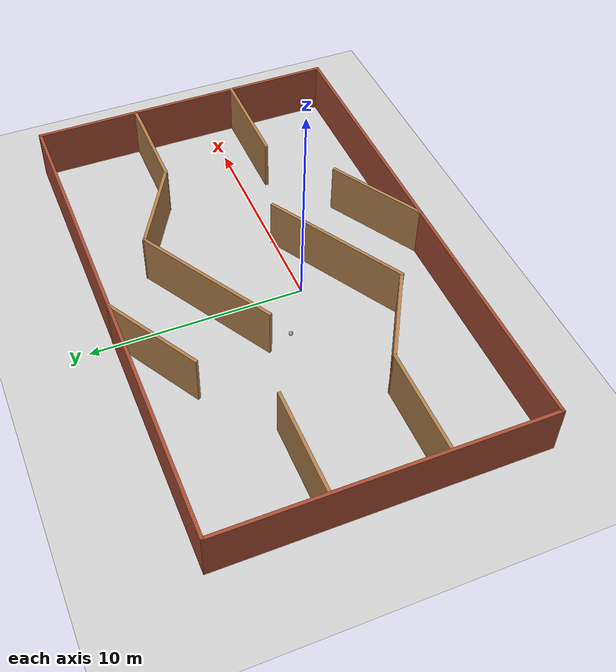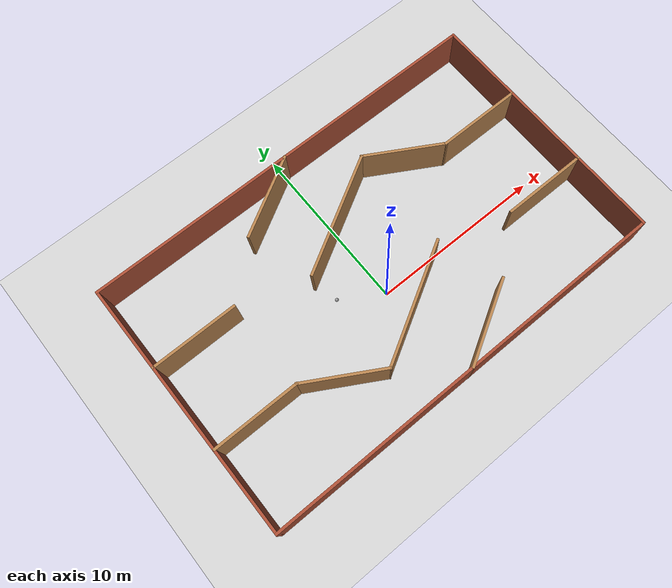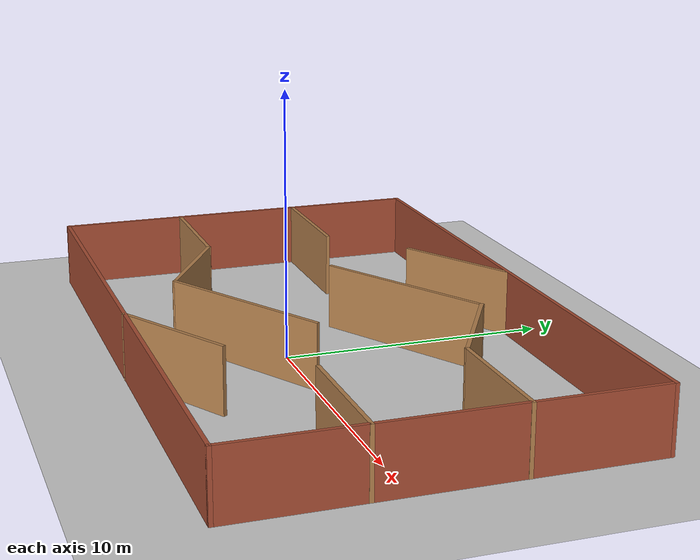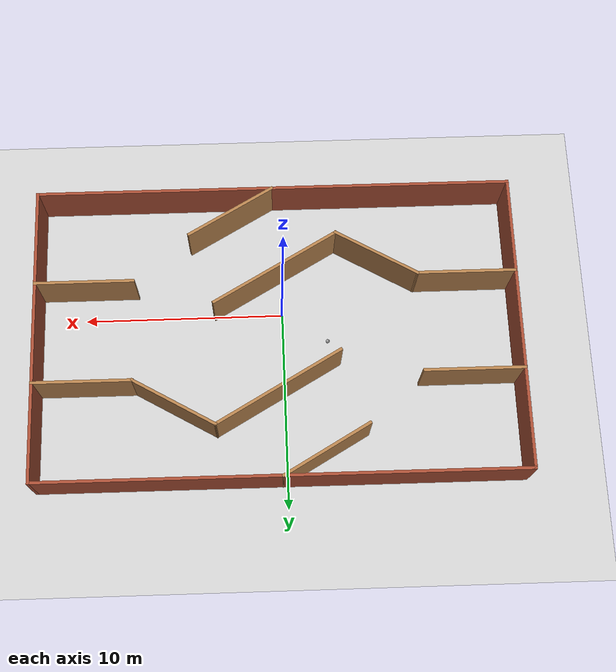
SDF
<sdf version="1.7">
 <world name="default">
  <model name="ground_plane">
   <static>1</static>
   <link name="link">
    <collision name="collision">
     <geometry><plane><normal>0 0 1</normal><size>100 100</size></plane></geometry>
     <surface>
      <contact><collide_bitmask>65535</collide_bitmask></contact>
      <friction><ode><mu>100</mu><mu2>50</mu2></ode></friction>
     </surface>
    </collision>
    <visual name="visual">
     <cast_shadows>0</cast_shadows>
     <geometry><plane><normal>0 0 1</normal><size>100 100</size></plane></geometry>
     <material>
      <script><uri>file://media/materials/scripts/gazebo.material</uri><name>Gazebo/Grey</name></script>
     </material>
    </visual>
   </link>
  </model>
  <light name="sun" type="directional">
   <pose>0 0 10 0 -0 0</pose>
   <diffuse>0.8 0.8 0.8 1</diffuse>
   <specular>0.2 0.2 0.2 1</specular>
   <attenuation>
    <range>1000</range>
    <constant>0.9</constant>
    <linear>0.01</linear>
    <quadratic>0.001</quadratic>
   </attenuation>
   <direction>-0.5 0.1 -0.9</direction>
   <spot><inner_angle>0</inner_angle><outer_angle>0</outer_angle><falloff>0</falloff></spot>
  </light>
  <gravity>0 0 -9.8</gravity>
  <magnetic_field>6e-06 2.3e-05 -4.2e-05</magnetic_field>
  <atmosphere type="adiabatic"/>
  <physics type="ode">
   <max_step_size>0.001</max_step_size>
   <real_time_factor>1</real_time_factor>
   <real_time_update_rate>1000</real_time_update_rate>
  </physics>
  <scene><ambient>0.4 0.4 0.4 1</ambient><background>0.7 0.7 0.7 1</background><shadows>1</shadows></scene>
  <spherical_coordinates>
   <surface_model>EARTH_WGS84</surface_model>
   <latitude_deg>0</latitude_deg>
   <longitude_deg>0</longitude_deg>
   <elevation>0</elevation>
   <heading_deg>0</heading_deg>
  </spherical_coordinates>
  <model name="my_ball">
   <link name="link">
    <inertial>
     <mass>1</mass>
     <inertia><ixx>0.1</ixx><ixy>0</ixy><ixz>0</ixz><iyy>0.1</iyy><iyz>0</iyz><izz>0.1</izz></inertia>
    </inertial>
    <visual name="visual">
     <geometry><sphere><radius>0.1</radius></sphere></geometry>
     <material>
      <script><name>Gazebo/Grey</name><uri>file://media/materials/scripts/gazebo.material</uri></script>
      <shader type="pixel"><normal_map>__default__</normal_map></shader>
      <ambient>1 1 1 1</ambient>
      <diffuse>1 1 1 1</diffuse>
      <specular>1 1 1 1</specular>
      <emissive>1 1 1 1</emissive>
     </material>
    </visual>
    <collision name="collision">
     <geometry><sphere><radius>0.1</radius></sphere></geometry>
     <surface>
      <friction>
       <ode><mu>1</mu><mu2>1</mu2><fdir1>0 0 0</fdir1><slip1>0</slip1><slip2>0</slip2></ode>
       <torsional>
        <coefficient>1</coefficient>
        <patch_radius>0</patch_radius>
        <surface_radius>0</surface_radius>
        <use_patch_radius>1</use_patch_radius>
        <ode><slip>0</slip></ode>
       </torsional>
      </friction>
      <bounce><restitution_coefficient>0</restitution_coefficient><threshold>1e+06</threshold></bounce>
      <contact>
       <collide_without_contact>0</collide_without_contact>
       <collide_without_contact_bitmask>1</collide_without_contact_bitmask>
       <collide_bitmask>1</collide_bitmask>
       <ode>
        <soft_cfm>0</soft_cfm>
        <soft_erp>0.2</soft_erp>
        <kp>1e+13</kp>
        <kd>1</kd>
        <max_vel>0.01</max_vel>
        <min_depth>0</min_depth>
       </ode>
       <bullet>
        <split_impulse>1</split_impulse>
        <split_impulse_penetration_threshold>-0.01</split_impulse_penetration_threshold>
        <soft_cfm>0</soft_cfm>
        <soft_erp>0.2</soft_erp>
        <kp>1e+13</kp>
        <kd>1</kd>
       </bullet>
      </contact>
     </surface>
    </collision>
   </link>
   <static>0</static>
   <pose>-2.25605 1.44897 0.1 0 -0 0</pose>
  </model>
  <model name="building">
   <pose>0.300769 1.37694 0 0 -0 3.14096</pose>
   <link name="Wall_10">
    <collision name="Wall_10_Collision">
     <geometry><box><size>24 0.15 2.5</size></box></geometry>
     <pose>0 0 1.25 0 -0 0</pose>
    </collision>
    <visual name="Wall_10_Visual">
     <pose>0 0 1.25 0 -0 0</pose>
     <geometry><box><size>24 0.15 2.5</size></box></geometry>
     <material>
      <script><uri>file://media/materials/scripts/gazebo.material</uri><name>Gazebo/Bricks</name></script>
      <ambient>1 1 1 1</ambient>
     </material>
     <meta><layer>0</layer></meta>
    </visual>
    <pose>0.005266 -7.425 0 0 -0 3.14159</pose>
   </link>
   <link name="Wall_106">
    <collision name="Wall_106_Collision">
     <geometry><box><size>5 0.15 2.5</size></box></geometry>
     <pose>0 0 1.25 0 -0 0</pose>
    </collision>
    <visual name="Wall_106_Visual">
     <pose>0 0 1.25 0 -0 0</pose>
     <geometry><box><size>5 0.15 2.5</size></box></geometry>
     <material>
      <script><uri>file://media/materials/scripts/gazebo.material</uri><name>Gazebo/Wood</name></script>
      <ambient>1 1 1 1</ambient>
     </material>
     <meta><layer>0</layer></meta>
    </visual>
    <pose>-2.16985 6.2125 0 0 -0 -2.61799</pose>
   </link>
   <link name="Wall_109">
    <collision name="Wall_109_Collision">
     <geometry><box><size>5 0.15 2.5</size></box></geometry>
     <pose>0 0 1.25 0 -0 0</pose>
    </collision>
    <visual name="Wall_109_Visual">
     <pose>0 0 1.25 0 -0 0</pose>
     <geometry><box><size>5 0.15 2.5</size></box></geometry>
     <material>
      <script><uri>file://media/materials/scripts/gazebo.material</uri><name>Gazebo/Wood</name></script>
      <ambient>1 1 1 1</ambient>
     </material>
     <meta><layer>0</layer></meta>
    </visual>
    <pose>2.18038 -6.2125 0 0 -0 0.523599</pose>
   </link>
   <link name="Wall_11">
    <collision name="Wall_11_Collision">
     <geometry><box><size>15 0.15 2.5</size></box></geometry>
     <pose>0 0 1.25 0 -0 0</pose>
    </collision>
    <visual name="Wall_11_Visual">
     <pose>0 0 1.25 0 -0 0</pose>
     <geometry><box><size>15 0.15 2.5</size></box></geometry>
     <material>
      <script><uri>file://media/materials/scripts/gazebo.material</uri><name>Gazebo/Bricks</name></script>
      <ambient>1 1 1 1</ambient>
     </material>
     <meta><layer>0</layer></meta>
    </visual>
    <pose>-11.9197 0 0 0 -0 1.5708</pose>
   </link>
   <link name="Wall_20">
    <collision name="Wall_20_Collision">
     <geometry><box><size>5 0.15 2.5</size></box></geometry>
     <pose>0 0 1.25 0 -0 0</pose>
    </collision>
    <visual name="Wall_20_Visual">
     <pose>0 0 1.25 0 -0 0</pose>
     <geometry><box><size>5 0.15 2.5</size></box></geometry>
     <material>
      <script><uri>file://media/materials/scripts/gazebo.material</uri><name>Gazebo/Wood</name></script>
      <ambient>1 1 1 1</ambient>
     </material>
     <meta><layer>0</layer></meta>
    </visual>
    <pose>-9.4977 2.59275 0 0 -0 0</pose>
   </link>
   <link name="Wall_26">
    <collision name="Wall_26_Collision">
     <geometry><box><size>5 0.15 2.5</size></box></geometry>
     <pose>0 0 1.25 0 -0 0</pose>
    </collision>
    <visual name="Wall_26_Visual">
     <pose>0 0 1.25 0 -0 0</pose>
     <geometry><box><size>5 0.15 2.5</size></box></geometry>
     <material>
      <script><uri>file://media/materials/scripts/gazebo.material</uri><name>Gazebo/Wood</name></script>
      <ambient>1 1 1 1</ambient>
     </material>
     <meta><layer>0</layer></meta>
    </visual>
    <pose>-9.50527 -2.54103 0 0 -0 0</pose>
   </link>
   <link name="Wall_56">
    <collision name="Wall_56_Collision">
     <geometry><box><size>5 0.15 2.5</size></box></geometry>
     <pose>0 0 1.25 0 -0 0</pose>
    </collision>
    <visual name="Wall_56_Visual">
     <pose>0 0 1.25 0 -0 0</pose>
     <geometry><box><size>5 0.15 2.5</size></box></geometry>
     <material>
      <script><uri>file://media/materials/scripts/gazebo.material</uri><name>Gazebo/Wood</name></script>
      <ambient>1 1 1 1</ambient>
     </material>
     <meta><layer>0</layer></meta>
    </visual>
    <pose>9.48846 -2.46743 0 0 -0 3.14159</pose>
   </link>
   <link name="Wall_62">
    <collision name="Wall_62_Collision">
     <geometry><box><size>5 0.15 2.5</size></box></geometry>
     <pose>0 0 1.25 0 -0 0</pose>
    </collision>
    <visual name="Wall_62_Visual">
     <pose>0 0 1.25 0 -0 0</pose>
     <geometry><box><size>5 0.15 2.5</size></box></geometry>
     <material>
      <script><uri>file://media/materials/scripts/gazebo.material</uri><name>Gazebo/Wood</name></script>
      <ambient>1 1 1 1</ambient>
     </material>
     <meta><layer>0</layer></meta>
    </visual>
    <pose>9.47206 2.58974 0 0 -0 3.14159</pose>
   </link>
   <link name="Wall_8">
    <collision name="Wall_8_Collision">
     <geometry><box><size>24 0.15 2.5</size></box></geometry>
     <pose>0 0 1.25 0 -0 0</pose>
    </collision>
    <visual name="Wall_8_Visual">
     <pose>0 0 1.25 0 -0 0</pose>
     <geometry><box><size>24 0.15 2.5</size></box></geometry>
     <material>
      <script><uri>file://media/materials/scripts/gazebo.material</uri><name>Gazebo/Bricks</name></script>
      <ambient>1 1 1 1</ambient>
     </material>
     <meta><layer>0</layer></meta>
    </visual>
    <pose>0.005266 7.425 0 0 -0 0</pose>
   </link>
   <link name="Wall_86">
    <collision name="Wall_86_Collision">
     <geometry><box><size>4.75 0.15 2.5</size></box></geometry>
     <pose>0 0 1.25 0 -0 0</pose>
    </collision>
    <visual name="Wall_86_Visual">
     <pose>0 0 1.25 0 -0 0</pose>
     <geometry><box><size>4.75 0.15 2.5</size></box></geometry>
     <material>
      <script><uri>file://media/materials/scripts/gazebo.material</uri><name>Gazebo/Wood</name></script>
      <ambient>1 1 1 1</ambient>
     </material>
     <meta><layer>0</layer></meta>
    </visual>
    <pose>-5.08841 -3.69103 0 0 -0 -0.523599</pose>
   </link>
   <link name="Wall_87">
    <collision name="Wall_87_Collision">
     <geometry><box><size>7.25 0.15 2.5</size></box></geometry>
     <pose>0 0 1.25 0 -0 0</pose>
    </collision>
    <visual name="Wall_87_Visual">
     <pose>0 0 1.25 0 -0 0</pose>
     <geometry><box><size>7.25 0.15 2.5</size></box></geometry>
     <material>
      <script><uri>file://media/materials/scripts/gazebo.material</uri><name>Gazebo/Wood</name></script>
      <ambient>1 1 1 1</ambient>
     </material>
     <meta><layer>0</layer></meta>
    </visual>
    <pose>-0.022161 -3.06603 0 0 -0 0.523599</pose>
   </link>
   <link name="Wall_9">
    <collision name="Wall_9_Collision">
     <geometry><box><size>15 0.15 2.5</size></box></geometry>
     <pose>0 0 1.25 0 -0 0</pose>
    </collision>
    <visual name="Wall_9_Visual">
     <pose>0 0 1.25 0 -0 0</pose>
     <geometry><box><size>15 0.15 2.5</size></box></geometry>
     <material>
      <script><uri>file://media/materials/scripts/gazebo.material</uri><name>Gazebo/Bricks</name></script>
      <ambient>1 1 1 1</ambient>
     </material>
     <meta><layer>0</layer></meta>
    </visual>
    <pose>11.9303 0 0 0 -0 -1.5708</pose>
   </link>
   <link name="Wall_92">
    <collision name="Wall_92_Collision">
     <geometry><box><size>4.75 0.15 2.5</size></box></geometry>
     <pose>0 0 1.25 0 -0 0</pose>
    </collision>
    <visual name="Wall_92_Visual">
     <pose>0 0 1.25 0 -0 0</pose>
     <geometry><box><size>4.75 0.15 2.5</size></box></geometry>
     <material>
      <script><uri>file://media/materials/scripts/gazebo.material</uri><name>Gazebo/Wood</name></script>
      <ambient>1 1 1 1</ambient>
     </material>
     <meta><layer>0</layer></meta>
    </visual>
    <pose>5.0552 3.73974 0 0 -0 2.61799</pose>
   </link>
   <link name="Wall_93">
    <collision name="Wall_93_Collision">
     <geometry><box><size>7.25 0.15 2.5</size></box></geometry>
     <pose>0 0 1.25 0 -0 0</pose>
    </collision>
    <visual name="Wall_93_Visual">
     <pose>0 0 1.25 0 -0 0</pose>
     <geometry><box><size>7.25 0.15 2.5</size></box></geometry>
     <material>
      <script><uri>file://media/materials/scripts/gazebo.material</uri><name>Gazebo/Wood</name></script>
      <ambient>1 1 1 1</ambient>
     </material>
     <meta><layer>0</layer></meta>
    </visual>
    <pose>-0.011048 3.11474 0 0 -0 -2.61799</pose>
   </link>
   <static>1</static>
  </model>
 </world>
</sdf>
